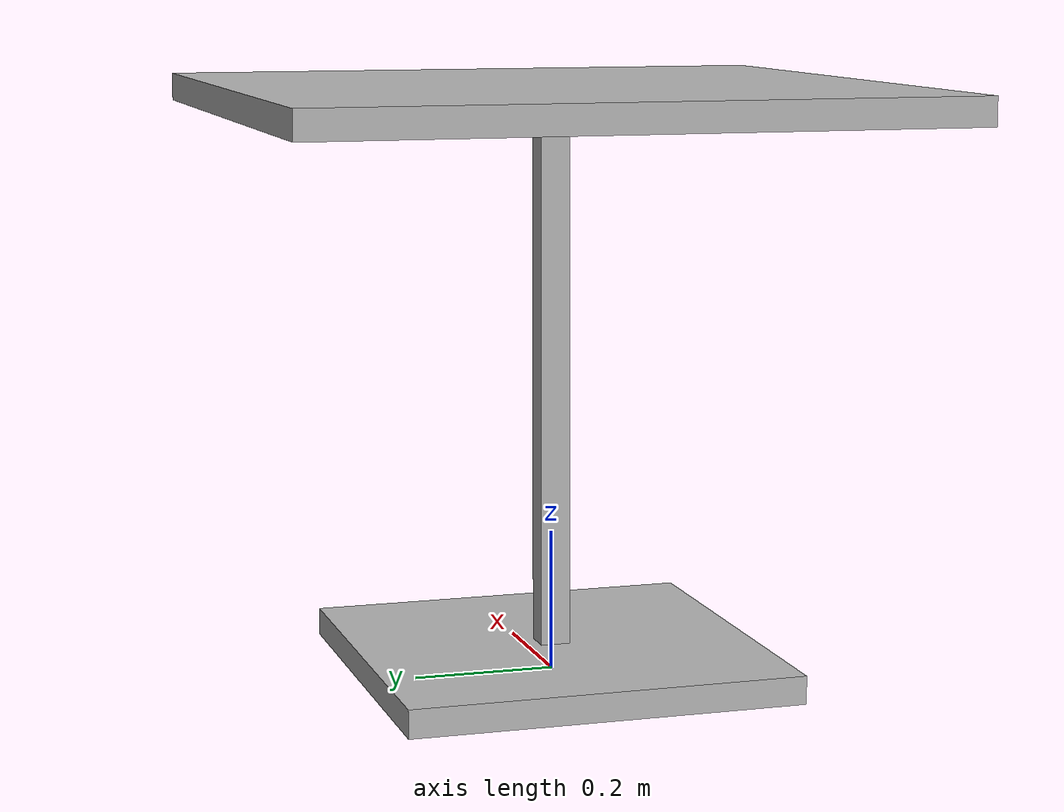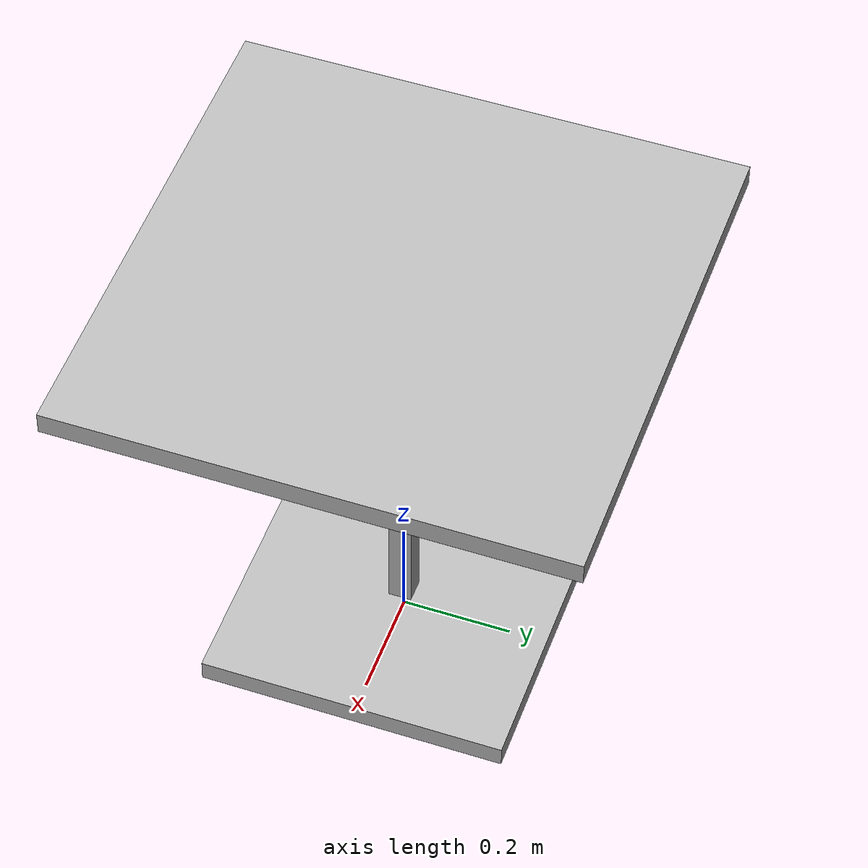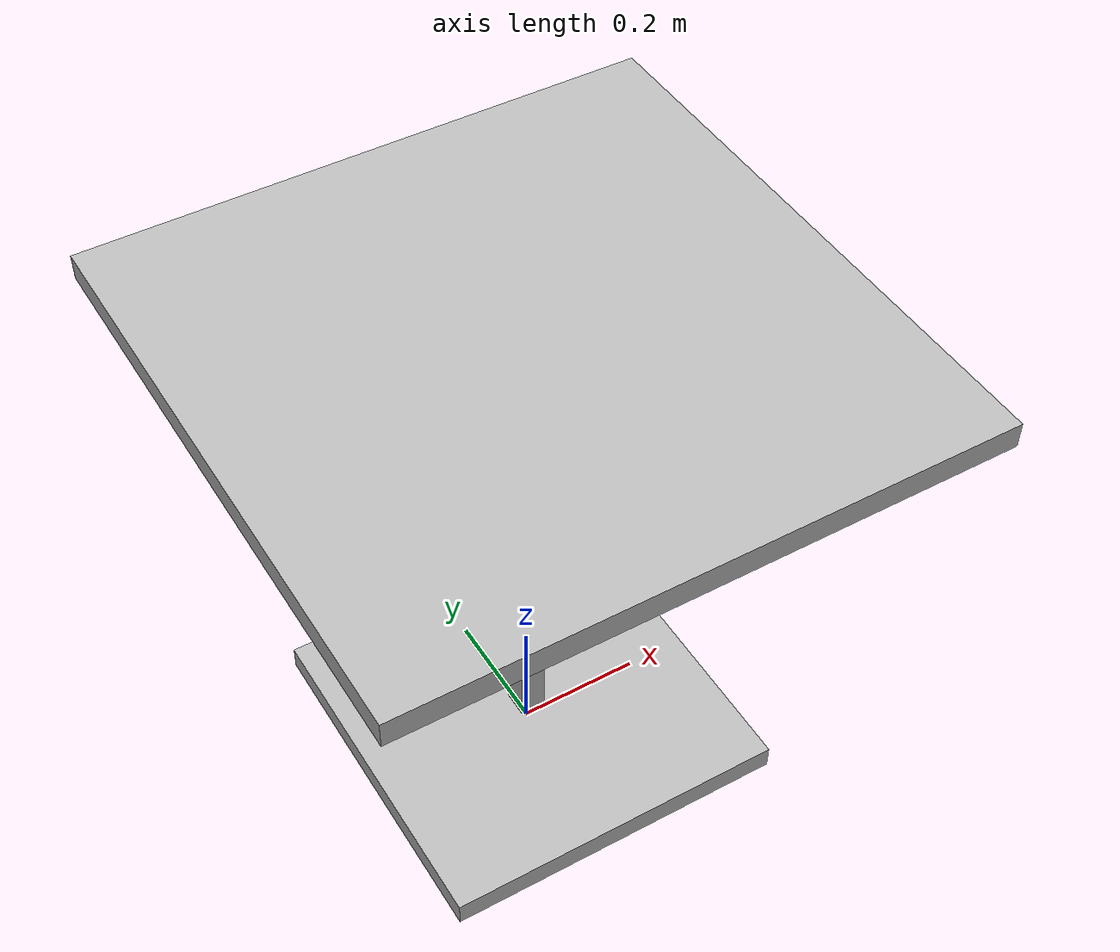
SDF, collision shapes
<?xml version="1.0" ?>
<sdf version="1.4">
  <model name="cafe_table">
    <static>true</static>
    <link name="link">
      <collision name="surface">
        <pose>0 0 0.8165 0 -0 0</pose>
        <geometry>
          <box>
            <size>0.913 0.913 0.04</size>
          </box>
        </geometry>
      </collision>

      <collision name="column">
        <pose>0 0 0.37 0 -0 0</pose>
        <geometry>
          <box>
            <size>0.042 0.042 0.9</size>
          </box>
        </geometry>
      </collision>

      <collision name="base">
        <pose>0 0 0.02 0 0 0</pose>
        <geometry>
          <box>
            <size>0.56 0.56 0.04</size>
          </box>
        </geometry>
      </collision>

      <visual name="visual">
        <geometry>
          <mesh>
            <uri>model://cafe_table/meshes/cafe_table.dae</uri>
            <scale>1.0 1.0 1.08</scale>
          </mesh>
        </geometry>
      </visual>
    </link>
  </model>
</sdf>
